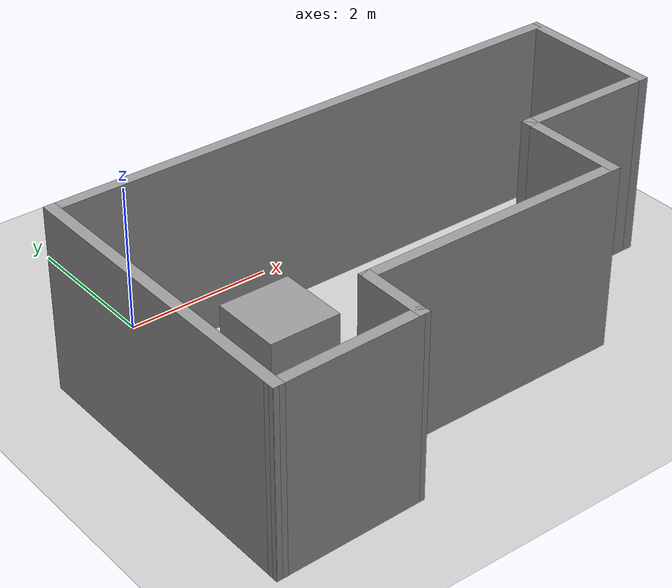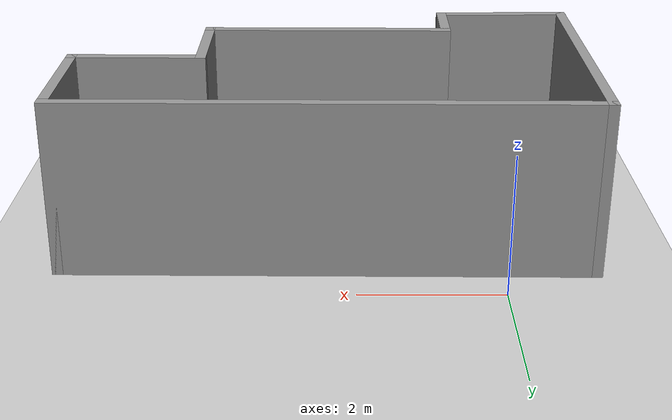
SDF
<sdf version="1.6">
 <world name="default">
  <light name="sun" type="directional">
   <pose>0 0 10 0 -0 0</pose>
   <diffuse>0.8 0.8 0.8 1</diffuse>
   <specular>0.2 0.2 0.2 1</specular>
   <attenuation>
    <range>1000</range>
    <constant>0.9</constant>
    <linear>0.01</linear>
    <quadratic>0.001</quadratic>
   </attenuation>
   <direction>-0.5 0.1 -0.9</direction>
  </light>
  <model name="ground_plane">
   <static>1</static>
   <link name="link">
    <collision name="collision">
     <geometry><plane><normal>0 0 1</normal><size>100 100</size></plane></geometry>
     <surface>
      <contact><collide_bitmask>65535</collide_bitmask></contact>
      <friction><ode><mu>100</mu><mu2>50</mu2></ode></friction>
     </surface>
    </collision>
    <visual name="visual">
     <cast_shadows>0</cast_shadows>
     <geometry><plane><normal>0 0 1</normal><size>100 100</size></plane></geometry>
     <material>
      <script><uri>file://media/materials/scripts/gazebo.material</uri><name>Gazebo/Grey</name></script>
     </material>
    </visual>
   </link>
  </model>
  <gravity>0 0 -9.8</gravity>
  <magnetic_field>6e-06 2.3e-05 -4.2e-05</magnetic_field>
  <atmosphere type="adiabatic"/>
  <physics name="default_physics" default="0" type="ode">
   <max_step_size>0.001</max_step_size>
   <real_time_factor>1</real_time_factor>
   <real_time_update_rate>1000</real_time_update_rate>
  </physics>
  <scene><ambient>0.4 0.4 0.4 1</ambient><background>0.7 0.7 0.7 1</background><shadows>1</shadows></scene>
  <audio><device>default</device></audio>
  <spherical_coordinates>
   <surface_model>EARTH_WGS84</surface_model>
   <latitude_deg>0</latitude_deg>
   <longitude_deg>0</longitude_deg>
   <elevation>0</elevation>
   <heading_deg>0</heading_deg>
  </spherical_coordinates>
  <model name="SimpleWorld">
   <pose>2.39403 -2.63097 0 0 -0 0</pose>
   <link name="Wall_1">
    <collision name="Wall_1_Collision">
     <geometry><box><size>4.25 0.15 2.5</size></box></geometry>
     <pose>0 0 1.25 0 -0 0</pose>
    </collision>
    <visual name="Wall_1_Visual">
     <pose>0 0 1.25 0 -0 0</pose>
     <geometry><box><size>4.25 0.15 2.5</size></box></geometry>
     <material>
      <script><uri>file://media/materials/scripts/gazebo.material</uri><name>Gazebo/Grey</name></script>
      <ambient>1 1 1 1</ambient>
     </material>
     <meta><layer>0</layer></meta>
    </visual>
    <pose>-3.67403 0.000974 0 0 -0 1.5708</pose>
   </link>
   <link name="Wall_2">
    <collision name="Wall_2_Collision">
     <geometry><box><size>7.5 0.15 2.5</size></box></geometry>
     <pose>0 0 1.25 0 -0 0</pose>
    </collision>
    <visual name="Wall_2_Visual">
     <pose>0 0 1.25 0 -0 0</pose>
     <geometry><box><size>7.5 0.15 2.5</size></box></geometry>
     <material>
      <script><uri>file://media/materials/scripts/gazebo.material</uri><name>Gazebo/Grey</name></script>
      <ambient>1 1 1 1</ambient>
     </material>
     <meta><layer>0</layer></meta>
    </visual>
    <pose>0.000974 2.05097 0 0 -0 0</pose>
   </link>
   <link name="Wall_3">
    <collision name="Wall_3_Collision">
     <geometry><box><size>2 0.15 2.5</size></box></geometry>
     <pose>0 0 1.25 0 -0 0</pose>
    </collision>
    <visual name="Wall_3_Visual">
     <pose>0 0 1.25 0 -0 0</pose>
     <geometry><box><size>2 0.15 2.5</size></box></geometry>
     <material>
      <script><uri>file://media/materials/scripts/gazebo.material</uri><name>Gazebo/Grey</name></script>
      <ambient>1 1 1 1</ambient>
     </material>
     <meta><layer>0</layer></meta>
    </visual>
    <pose>3.67597 1.12597 0 0 -0 -1.5708</pose>
   </link>
   <link name="Wall_4">
    <collision name="Wall_4_Collision">
     <geometry><box><size>2 0.15 2.5</size></box></geometry>
     <pose>0 0 1.25 0 -0 0</pose>
    </collision>
    <visual name="Wall_4_Visual">
     <pose>0 0 1.25 0 -0 0</pose>
     <geometry><box><size>2 0.15 2.5</size></box></geometry>
     <material>
      <script><uri>file://media/materials/scripts/gazebo.material</uri><name>Gazebo/Grey</name></script>
      <ambient>1 1 1 1</ambient>
     </material>
     <meta><layer>0</layer></meta>
    </visual>
    <pose>2.75097 0.200974 0 0 -0 3.14159</pose>
   </link>
   <link name="Wall_5">
    <collision name="Wall_5_Collision">
     <geometry><box><size>1.5 0.15 2.5</size></box></geometry>
     <pose>0 0 1.25 0 -0 0</pose>
    </collision>
    <visual name="Wall_5_Visual">
     <pose>0 0 1.25 0 -0 0</pose>
     <geometry><box><size>1.5 0.15 2.5</size></box></geometry>
     <material>
      <script><uri>file://media/materials/scripts/gazebo.material</uri><name>Gazebo/Grey</name></script>
      <ambient>1 1 1 1</ambient>
     </material>
     <meta><layer>0</layer></meta>
    </visual>
    <pose>1.82597 -0.474026 0 0 -0 -1.5708</pose>
   </link>
   <link name="Wall_6">
    <collision name="Wall_6_Collision">
     <geometry><box><size>3.75 0.15 2.5</size></box></geometry>
     <pose>0 0 1.25 0 -0 0</pose>
    </collision>
    <visual name="Wall_6_Visual">
     <pose>0 0 1.25 0 -0 0</pose>
     <geometry><box><size>3.75 0.15 2.5</size></box></geometry>
     <material>
      <script><uri>file://media/materials/scripts/gazebo.material</uri><name>Gazebo/Grey</name></script>
      <ambient>1 1 1 1</ambient>
     </material>
     <meta><layer>0</layer></meta>
    </visual>
    <pose>0.025974 -1.14903 0 0 -0 3.14159</pose>
   </link>
   <link name="Wall_7">
    <collision name="Wall_7_Collision">
     <geometry><box><size>1 0.15 2.5</size></box></geometry>
     <pose>0 0 1.25 0 -0 0</pose>
    </collision>
    <visual name="Wall_7_Visual">
     <pose>0 0 1.25 0 -0 0</pose>
     <geometry><box><size>1 0.15 2.5</size></box></geometry>
     <material>
      <script><uri>file://media/materials/scripts/gazebo.material</uri><name>Gazebo/Grey</name></script>
      <ambient>1 1 1 1</ambient>
     </material>
     <meta><layer>0</layer></meta>
    </visual>
    <pose>-1.77403 -1.57403 0 0 -0 -1.5708</pose>
   </link>
   <link name="Wall_8">
    <collision name="Wall_8_Collision">
     <geometry><box><size>2.05066 0.15 2.5</size></box></geometry>
     <pose>0 0 1.25 0 -0 0</pose>
    </collision>
    <visual name="Wall_8_Visual">
     <pose>0 0 1.25 0 -0 0</pose>
     <geometry><box><size>2.05066 0.15 2.5</size></box></geometry>
     <material>
      <script><uri>file://media/materials/scripts/gazebo.material</uri><name>Gazebo/Grey</name></script>
      <ambient>1 1 1 1</ambient>
     </material>
     <meta><layer>0</layer></meta>
    </visual>
    <pose>-2.72403 -2.02403 0 0 -0 -3.11528</pose>
   </link>
   <static>1</static>
  </model>
  <model name="unit_box">
   <pose>0.791805 -1.97382 0.499995 -1e-05 -0 0</pose>
   <link name="link">
    <inertial>
     <mass>1</mass>
     <inertia>
      <ixx>0.166667</ixx>
      <ixy>0</ixy>
      <ixz>0</ixz>
      <iyy>0.166667</iyy>
      <iyz>0</iyz>
      <izz>0.166667</izz>
     </inertia>
    </inertial>
    <collision name="collision"><geometry><box><size>1 1 1</size></box></geometry></collision>
    <visual name="visual">
     <geometry><box><size>1 1 1</size></box></geometry>
     <material>
      <script><name>Gazebo/Grey</name><uri>file://media/materials/scripts/gazebo.material</uri></script>
     </material>
    </visual>
   </link>
  </model>
  <model name="unit_cylinder">
   <pose>2.73785 -2.87869 0.499997 3e-06 4e-06 -0</pose>
   <link name="link">
    <inertial>
     <mass>1</mass>
     <inertia><ixx>0.145833</ixx><ixy>0</ixy><ixz>0</ixz><iyy>0.145833</iyy><iyz>0</iyz><izz>0.125</izz></inertia>
    </inertial>
    <collision name="collision">
     <geometry><cylinder><radius>0.5</radius><length>1</length></cylinder></geometry>
    </collision>
    <visual name="visual">
     <geometry><cylinder><radius>0.5</radius><length>1</length></cylinder></geometry>
     <material>
      <script><name>Gazebo/Grey</name><uri>file://media/materials/scripts/gazebo.material</uri></script>
     </material>
    </visual>
   </link>
  </model>
 </world>
</sdf>
